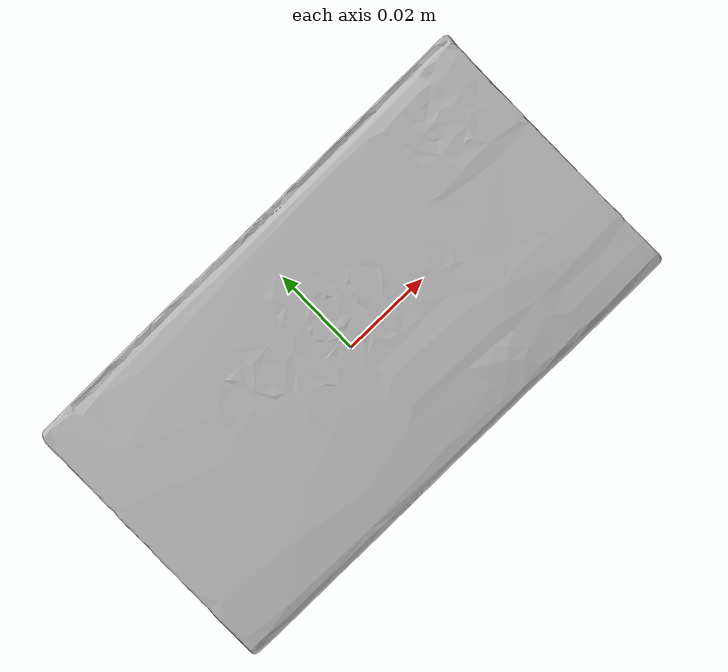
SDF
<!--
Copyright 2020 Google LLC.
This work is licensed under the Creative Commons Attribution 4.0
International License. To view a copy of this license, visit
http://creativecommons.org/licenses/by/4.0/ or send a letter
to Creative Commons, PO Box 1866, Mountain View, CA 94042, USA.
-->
<?xml version="1.0" ?>
<sdf version="1.6">
  <model name="Phillips_Colon_Health_Probiotic_Capsule">
    <link name="link_0">
      <visual name="visual">
        <geometry>
          <mesh>
            <uri>meshes/model.obj</uri>
          </mesh>
        </geometry>
      </visual>
      <collision name="collision_0">
        <geometry>
          <mesh>
            <uri>meshes/model.obj</uri>
          </mesh>
        </geometry>
      </collision>
    </link>
  </model>
</sdf>
